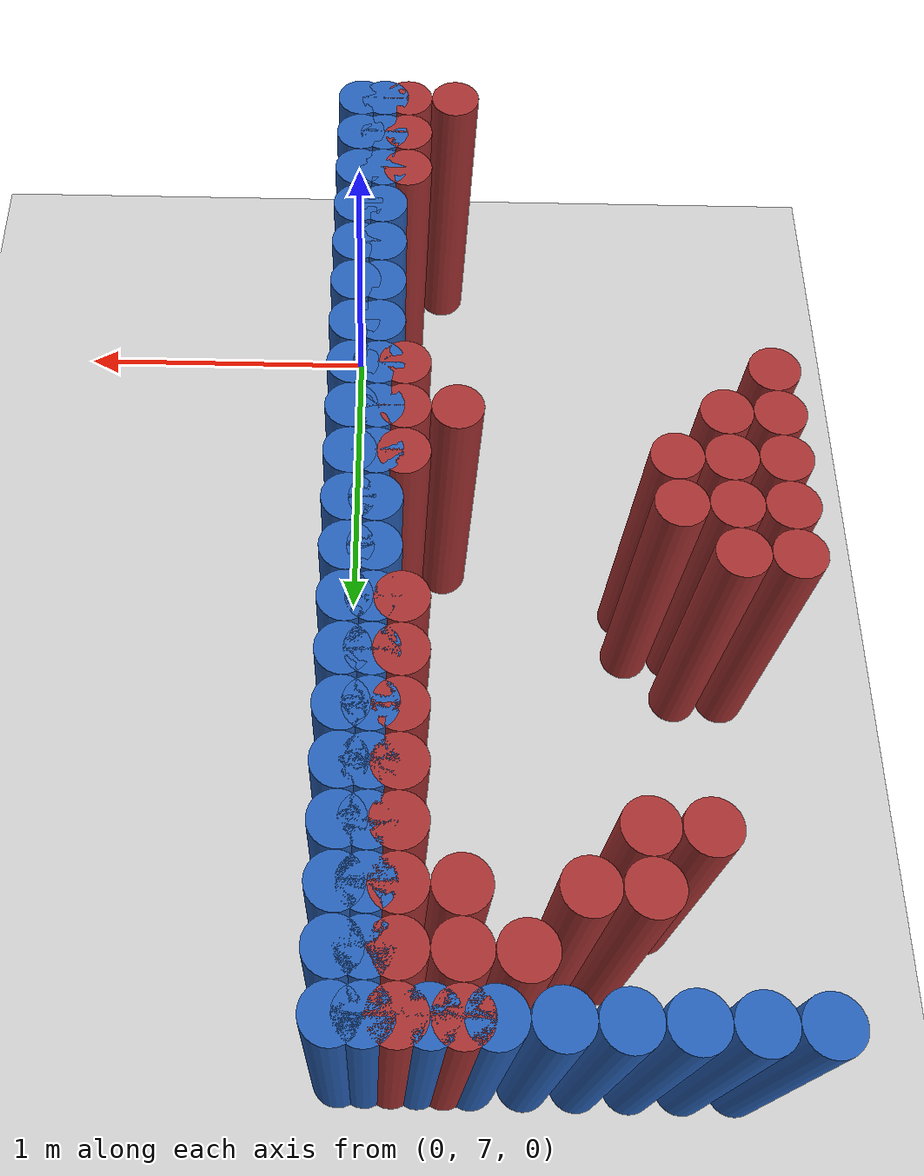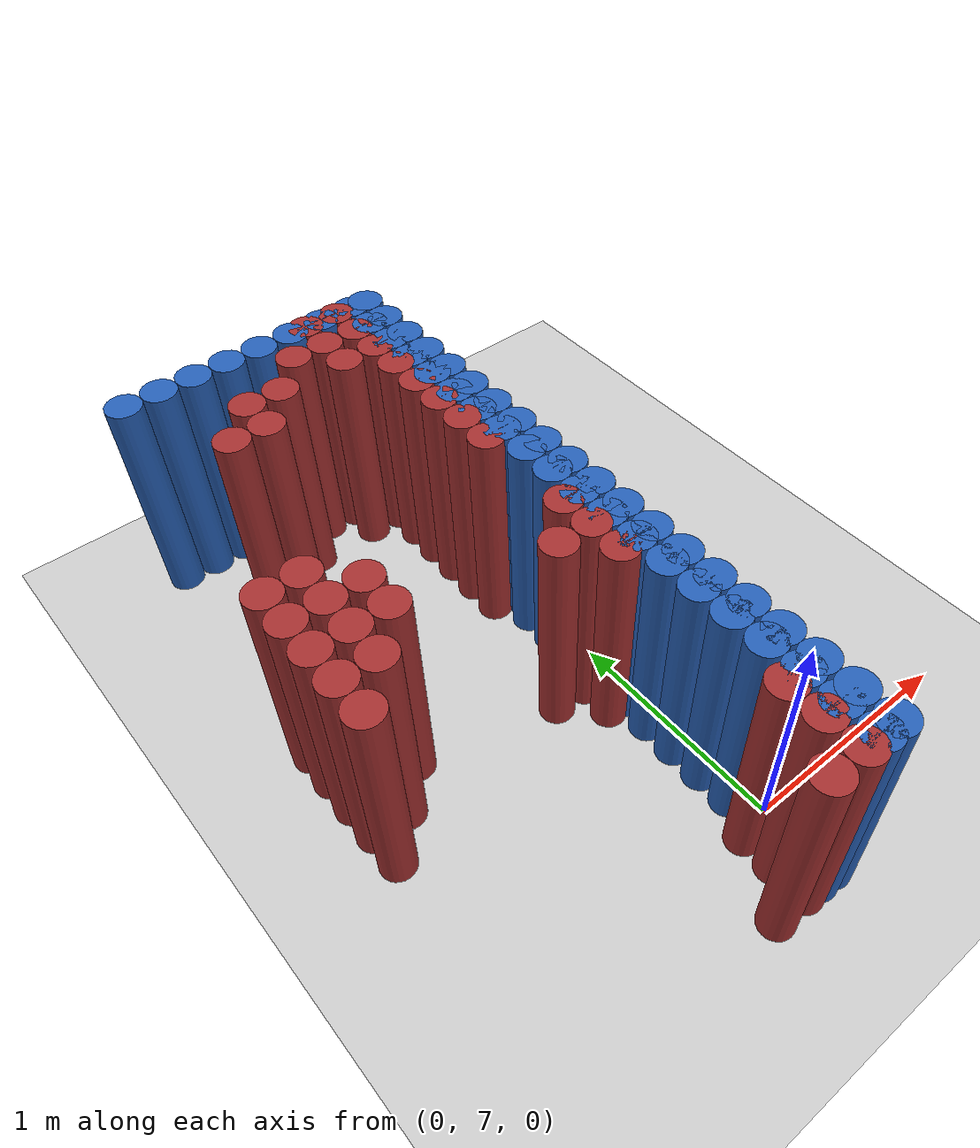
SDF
<sdf version="1.6">
 <world name="barn_world">
  <model name="ground_plane">
   <static>1</static>
   <link name="link">
    <collision name="collision">
     <geometry><plane><normal>0 0 1</normal><size>100 100</size></plane></geometry>
    </collision>
    <visual name="visual">
     <geometry><plane><normal>0 0 1</normal><size>100 100</size></plane></geometry>
     <material>
      <script><uri>file://media/materials/scripts/gazebo.material</uri><name>Gazebo/Grey</name></script>
     </material>
    </visual>
   </link>
  </model>
  <model name="unit_cylinder_316">
   <static>1</static>
   <pose>-1.2000 7.7250 0.5 0 0 0</pose>
   <link name="link">
    <collision name="collision">
     <geometry><cylinder><radius>0.075</radius><length>1</length></cylinder></geometry>
    </collision>
    <visual name="visual">
     <geometry><cylinder><radius>0.075</radius><length>1</length></cylinder></geometry>
     <material><ambient>0.648 0.192 0.192 1</ambient><diffuse>0.648 0.192 0.192 1</diffuse></material>
    </visual>
   </link>
  </model>
  <model name="unit_cylinder_317">
   <static>1</static>
   <pose>-1.2000 7.8750 0.5 0 0 0</pose>
   <link name="link">
    <collision name="collision">
     <geometry><cylinder><radius>0.075</radius><length>1</length></cylinder></geometry>
    </collision>
    <visual name="visual">
     <geometry><cylinder><radius>0.075</radius><length>1</length></cylinder></geometry>
     <material><ambient>0.648 0.192 0.192 1</ambient><diffuse>0.648 0.192 0.192 1</diffuse></material>
    </visual>
   </link>
  </model>
  <model name="unit_cylinder_318">
   <static>1</static>
   <pose>-1.2000 8.0250 0.5 0 0 0</pose>
   <link name="link">
    <collision name="collision">
     <geometry><cylinder><radius>0.075</radius><length>1</length></cylinder></geometry>
    </collision>
    <visual name="visual">
     <geometry><cylinder><radius>0.075</radius><length>1</length></cylinder></geometry>
     <material><ambient>0.648 0.192 0.192 1</ambient><diffuse>0.648 0.192 0.192 1</diffuse></material>
    </visual>
   </link>
  </model>
  <model name="unit_cylinder_319">
   <static>1</static>
   <pose>-1.2000 8.1750 0.5 0 0 0</pose>
   <link name="link">
    <collision name="collision">
     <geometry><cylinder><radius>0.075</radius><length>1</length></cylinder></geometry>
    </collision>
    <visual name="visual">
     <geometry><cylinder><radius>0.075</radius><length>1</length></cylinder></geometry>
     <material><ambient>0.648 0.192 0.192 1</ambient><diffuse>0.648 0.192 0.192 1</diffuse></material>
    </visual>
   </link>
  </model>
  <model name="unit_cylinder_320">
   <static>1</static>
   <pose>-1.2000 8.3250 0.5 0 0 0</pose>
   <link name="link">
    <collision name="collision">
     <geometry><cylinder><radius>0.075</radius><length>1</length></cylinder></geometry>
    </collision>
    <visual name="visual">
     <geometry><cylinder><radius>0.075</radius><length>1</length></cylinder></geometry>
     <material><ambient>0.648 0.192 0.192 1</ambient><diffuse>0.648 0.192 0.192 1</diffuse></material>
    </visual>
   </link>
  </model>
  <model name="unit_cylinder_321">
   <static>1</static>
   <pose>-1.0500 7.8750 0.5 0 0 0</pose>
   <link name="link">
    <collision name="collision">
     <geometry><cylinder><radius>0.075</radius><length>1</length></cylinder></geometry>
    </collision>
    <visual name="visual">
     <geometry><cylinder><radius>0.075</radius><length>1</length></cylinder></geometry>
     <material><ambient>0.648 0.192 0.192 1</ambient><diffuse>0.648 0.192 0.192 1</diffuse></material>
    </visual>
   </link>
  </model>
  <model name="unit_cylinder_322">
   <static>1</static>
   <pose>-1.0500 8.0250 0.5 0 0 0</pose>
   <link name="link">
    <collision name="collision">
     <geometry><cylinder><radius>0.075</radius><length>1</length></cylinder></geometry>
    </collision>
    <visual name="visual">
     <geometry><cylinder><radius>0.075</radius><length>1</length></cylinder></geometry>
     <material><ambient>0.648 0.192 0.192 1</ambient><diffuse>0.648 0.192 0.192 1</diffuse></material>
    </visual>
   </link>
  </model>
  <model name="unit_cylinder_323">
   <static>1</static>
   <pose>-1.0500 8.1750 0.5 0 0 0</pose>
   <link name="link">
    <collision name="collision">
     <geometry><cylinder><radius>0.075</radius><length>1</length></cylinder></geometry>
    </collision>
    <visual name="visual">
     <geometry><cylinder><radius>0.075</radius><length>1</length></cylinder></geometry>
     <material><ambient>0.648 0.192 0.192 1</ambient><diffuse>0.648 0.192 0.192 1</diffuse></material>
    </visual>
   </link>
  </model>
  <model name="unit_cylinder_324">
   <static>1</static>
   <pose>-1.0500 8.3250 0.5 0 0 0</pose>
   <link name="link">
    <collision name="collision">
     <geometry><cylinder><radius>0.075</radius><length>1</length></cylinder></geometry>
    </collision>
    <visual name="visual">
     <geometry><cylinder><radius>0.075</radius><length>1</length></cylinder></geometry>
     <material><ambient>0.648 0.192 0.192 1</ambient><diffuse>0.648 0.192 0.192 1</diffuse></material>
    </visual>
   </link>
  </model>
  <model name="unit_cylinder_325">
   <static>1</static>
   <pose>-0.9000 8.0250 0.5 0 0 0</pose>
   <link name="link">
    <collision name="collision">
     <geometry><cylinder><radius>0.075</radius><length>1</length></cylinder></geometry>
    </collision>
    <visual name="visual">
     <geometry><cylinder><radius>0.075</radius><length>1</length></cylinder></geometry>
     <material><ambient>0.648 0.192 0.192 1</ambient><diffuse>0.648 0.192 0.192 1</diffuse></material>
    </visual>
   </link>
  </model>
  <model name="unit_cylinder_326">
   <static>1</static>
   <pose>-0.9000 8.1750 0.5 0 0 0</pose>
   <link name="link">
    <collision name="collision">
     <geometry><cylinder><radius>0.075</radius><length>1</length></cylinder></geometry>
    </collision>
    <visual name="visual">
     <geometry><cylinder><radius>0.075</radius><length>1</length></cylinder></geometry>
     <material><ambient>0.648 0.192 0.192 1</ambient><diffuse>0.648 0.192 0.192 1</diffuse></material>
    </visual>
   </link>
  </model>
  <model name="unit_cylinder_327">
   <static>1</static>
   <pose>-0.9000 9.0750 0.5 0 0 0</pose>
   <link name="link">
    <collision name="collision">
     <geometry><cylinder><radius>0.075</radius><length>1</length></cylinder></geometry>
    </collision>
    <visual name="visual">
     <geometry><cylinder><radius>0.075</radius><length>1</length></cylinder></geometry>
     <material><ambient>0.648 0.192 0.192 1</ambient><diffuse>0.648 0.192 0.192 1</diffuse></material>
    </visual>
   </link>
  </model>
  <model name="unit_cylinder_329">
   <static>1</static>
   <pose>-0.7500 9.0750 0.5 0 0 0</pose>
   <link name="link">
    <collision name="collision">
     <geometry><cylinder><radius>0.075</radius><length>1</length></cylinder></geometry>
    </collision>
    <visual name="visual">
     <geometry><cylinder><radius>0.075</radius><length>1</length></cylinder></geometry>
     <material><ambient>0.648 0.192 0.192 1</ambient><diffuse>0.648 0.192 0.192 1</diffuse></material>
    </visual>
   </link>
  </model>
  <model name="unit_cylinder_330">
   <static>1</static>
   <pose>-0.7500 9.2250 0.5 0 0 0</pose>
   <link name="link">
    <collision name="collision">
     <geometry><cylinder><radius>0.075</radius><length>1</length></cylinder></geometry>
    </collision>
    <visual name="visual">
     <geometry><cylinder><radius>0.075</radius><length>1</length></cylinder></geometry>
     <material><ambient>0.648 0.192 0.192 1</ambient><diffuse>0.648 0.192 0.192 1</diffuse></material>
    </visual>
   </link>
  </model>
  <model name="unit_cylinder_333">
   <static>1</static>
   <pose>-0.6000 9.2250 0.5 0 0 0</pose>
   <link name="link">
    <collision name="collision">
     <geometry><cylinder><radius>0.075</radius><length>1</length></cylinder></geometry>
    </collision>
    <visual name="visual">
     <geometry><cylinder><radius>0.075</radius><length>1</length></cylinder></geometry>
     <material><ambient>0.648 0.192 0.192 1</ambient><diffuse>0.648 0.192 0.192 1</diffuse></material>
    </visual>
   </link>
  </model>
  <model name="unit_cylinder_338">
   <static>1</static>
   <pose>-0.4500 9.3750 0.5 0 0 0</pose>
   <link name="link">
    <collision name="collision">
     <geometry><cylinder><radius>0.075</radius><length>1</length></cylinder></geometry>
    </collision>
    <visual name="visual">
     <geometry><cylinder><radius>0.075</radius><length>1</length></cylinder></geometry>
     <material><ambient>0.648 0.192 0.192 1</ambient><diffuse>0.648 0.192 0.192 1</diffuse></material>
    </visual>
   </link>
  </model>
  <model name="unit_cylinder_344">
   <static>1</static>
   <pose>-0.3000 6.6750 0.5 0 0 0</pose>
   <link name="link">
    <collision name="collision">
     <geometry><cylinder><radius>0.075</radius><length>1</length></cylinder></geometry>
    </collision>
    <visual name="visual">
     <geometry><cylinder><radius>0.075</radius><length>1</length></cylinder></geometry>
     <material><ambient>0.648 0.192 0.192 1</ambient><diffuse>0.648 0.192 0.192 1</diffuse></material>
    </visual>
   </link>
  </model>
  <model name="unit_cylinder_345">
   <static>1</static>
   <pose>-0.3000 7.8750 0.5 0 0 0</pose>
   <link name="link">
    <collision name="collision">
     <geometry><cylinder><radius>0.075</radius><length>1</length></cylinder></geometry>
    </collision>
    <visual name="visual">
     <geometry><cylinder><radius>0.075</radius><length>1</length></cylinder></geometry>
     <material><ambient>0.648 0.192 0.192 1</ambient><diffuse>0.648 0.192 0.192 1</diffuse></material>
    </visual>
   </link>
  </model>
  <model name="unit_cylinder_346">
   <static>1</static>
   <pose>-0.3000 9.2250 0.5 0 0 0</pose>
   <link name="link">
    <collision name="collision">
     <geometry><cylinder><radius>0.075</radius><length>1</length></cylinder></geometry>
    </collision>
    <visual name="visual">
     <geometry><cylinder><radius>0.075</radius><length>1</length></cylinder></geometry>
     <material><ambient>0.648 0.192 0.192 1</ambient><diffuse>0.648 0.192 0.192 1</diffuse></material>
    </visual>
   </link>
  </model>
  <model name="unit_cylinder_347">
   <static>1</static>
   <pose>-0.3000 9.3750 0.5 0 0 0</pose>
   <link name="link">
    <collision name="collision">
     <geometry><cylinder><radius>0.075</radius><length>1</length></cylinder></geometry>
    </collision>
    <visual name="visual">
     <geometry><cylinder><radius>0.075</radius><length>1</length></cylinder></geometry>
     <material><ambient>0.648 0.192 0.192 1</ambient><diffuse>0.648 0.192 0.192 1</diffuse></material>
    </visual>
   </link>
  </model>
  <model name="unit_cylinder_348">
   <static>1</static>
   <pose>-0.3000 9.5250 0.5 0 0 0</pose>
   <link name="link">
    <collision name="collision">
     <geometry><cylinder><radius>0.075</radius><length>1</length></cylinder></geometry>
    </collision>
    <visual name="visual">
     <geometry><cylinder><radius>0.075</radius><length>1</length></cylinder></geometry>
     <material><ambient>0.648 0.192 0.192 1</ambient><diffuse>0.648 0.192 0.192 1</diffuse></material>
    </visual>
   </link>
  </model>
  <model name="unit_cylinder_357">
   <static>1</static>
   <pose>-0.1500 6.6750 0.5 0 0 0</pose>
   <link name="link">
    <collision name="collision">
     <geometry><cylinder><radius>0.075</radius><length>1</length></cylinder></geometry>
    </collision>
    <visual name="visual">
     <geometry><cylinder><radius>0.075</radius><length>1</length></cylinder></geometry>
     <material><ambient>0.648 0.192 0.192 1</ambient><diffuse>0.648 0.192 0.192 1</diffuse></material>
    </visual>
   </link>
  </model>
  <model name="unit_cylinder_358">
   <static>1</static>
   <pose>-0.1500 6.8250 0.5 0 0 0</pose>
   <link name="link">
    <collision name="collision">
     <geometry><cylinder><radius>0.075</radius><length>1</length></cylinder></geometry>
    </collision>
    <visual name="visual">
     <geometry><cylinder><radius>0.075</radius><length>1</length></cylinder></geometry>
     <material><ambient>0.648 0.192 0.192 1</ambient><diffuse>0.648 0.192 0.192 1</diffuse></material>
    </visual>
   </link>
  </model>
  <model name="unit_cylinder_359">
   <static>1</static>
   <pose>-0.1500 6.9750 0.5 0 0 0</pose>
   <link name="link">
    <collision name="collision">
     <geometry><cylinder><radius>0.075</radius><length>1</length></cylinder></geometry>
    </collision>
    <visual name="visual">
     <geometry><cylinder><radius>0.075</radius><length>1</length></cylinder></geometry>
     <material><ambient>0.648 0.192 0.192 1</ambient><diffuse>0.648 0.192 0.192 1</diffuse></material>
    </visual>
   </link>
  </model>
  <model name="unit_cylinder_360">
   <static>1</static>
   <pose>-0.1500 7.7250 0.5 0 0 0</pose>
   <link name="link">
    <collision name="collision">
     <geometry><cylinder><radius>0.075</radius><length>1</length></cylinder></geometry>
    </collision>
    <visual name="visual">
     <geometry><cylinder><radius>0.075</radius><length>1</length></cylinder></geometry>
     <material><ambient>0.648 0.192 0.192 1</ambient><diffuse>0.648 0.192 0.192 1</diffuse></material>
    </visual>
   </link>
  </model>
  <model name="unit_cylinder_361">
   <static>1</static>
   <pose>-0.1500 7.8750 0.5 0 0 0</pose>
   <link name="link">
    <collision name="collision">
     <geometry><cylinder><radius>0.075</radius><length>1</length></cylinder></geometry>
    </collision>
    <visual name="visual">
     <geometry><cylinder><radius>0.075</radius><length>1</length></cylinder></geometry>
     <material><ambient>0.648 0.192 0.192 1</ambient><diffuse>0.648 0.192 0.192 1</diffuse></material>
    </visual>
   </link>
  </model>
  <model name="unit_cylinder_362">
   <static>1</static>
   <pose>-0.1500 8.0250 0.5 0 0 0</pose>
   <link name="link">
    <collision name="collision">
     <geometry><cylinder><radius>0.075</radius><length>1</length></cylinder></geometry>
    </collision>
    <visual name="visual">
     <geometry><cylinder><radius>0.075</radius><length>1</length></cylinder></geometry>
     <material><ambient>0.648 0.192 0.192 1</ambient><diffuse>0.648 0.192 0.192 1</diffuse></material>
    </visual>
   </link>
  </model>
  <model name="unit_cylinder_363">
   <static>1</static>
   <pose>-0.1500 8.4750 0.5 0 0 0</pose>
   <link name="link">
    <collision name="collision">
     <geometry><cylinder><radius>0.075</radius><length>1</length></cylinder></geometry>
    </collision>
    <visual name="visual">
     <geometry><cylinder><radius>0.075</radius><length>1</length></cylinder></geometry>
     <material><ambient>0.648 0.192 0.192 1</ambient><diffuse>0.648 0.192 0.192 1</diffuse></material>
    </visual>
   </link>
  </model>
  <model name="unit_cylinder_364">
   <static>1</static>
   <pose>-0.1500 8.6250 0.5 0 0 0</pose>
   <link name="link">
    <collision name="collision">
     <geometry><cylinder><radius>0.075</radius><length>1</length></cylinder></geometry>
    </collision>
    <visual name="visual">
     <geometry><cylinder><radius>0.075</radius><length>1</length></cylinder></geometry>
     <material><ambient>0.648 0.192 0.192 1</ambient><diffuse>0.648 0.192 0.192 1</diffuse></material>
    </visual>
   </link>
  </model>
  <model name="unit_cylinder_365">
   <static>1</static>
   <pose>-0.1500 8.7750 0.5 0 0 0</pose>
   <link name="link">
    <collision name="collision">
     <geometry><cylinder><radius>0.075</radius><length>1</length></cylinder></geometry>
    </collision>
    <visual name="visual">
     <geometry><cylinder><radius>0.075</radius><length>1</length></cylinder></geometry>
     <material><ambient>0.648 0.192 0.192 1</ambient><diffuse>0.648 0.192 0.192 1</diffuse></material>
    </visual>
   </link>
  </model>
  <model name="unit_cylinder_366">
   <static>1</static>
   <pose>-0.1500 8.9250 0.5 0 0 0</pose>
   <link name="link">
    <collision name="collision">
     <geometry><cylinder><radius>0.075</radius><length>1</length></cylinder></geometry>
    </collision>
    <visual name="visual">
     <geometry><cylinder><radius>0.075</radius><length>1</length></cylinder></geometry>
     <material><ambient>0.648 0.192 0.192 1</ambient><diffuse>0.648 0.192 0.192 1</diffuse></material>
    </visual>
   </link>
  </model>
  <model name="unit_cylinder_367">
   <static>1</static>
   <pose>-0.1500 9.0750 0.5 0 0 0</pose>
   <link name="link">
    <collision name="collision">
     <geometry><cylinder><radius>0.075</radius><length>1</length></cylinder></geometry>
    </collision>
    <visual name="visual">
     <geometry><cylinder><radius>0.075</radius><length>1</length></cylinder></geometry>
     <material><ambient>0.648 0.192 0.192 1</ambient><diffuse>0.648 0.192 0.192 1</diffuse></material>
    </visual>
   </link>
  </model>
  <model name="unit_cylinder_368">
   <static>1</static>
   <pose>-0.1500 9.2250 0.5 0 0 0</pose>
   <link name="link">
    <collision name="collision">
     <geometry><cylinder><radius>0.075</radius><length>1</length></cylinder></geometry>
    </collision>
    <visual name="visual">
     <geometry><cylinder><radius>0.075</radius><length>1</length></cylinder></geometry>
     <material><ambient>0.648 0.192 0.192 1</ambient><diffuse>0.648 0.192 0.192 1</diffuse></material>
    </visual>
   </link>
  </model>
  <model name="unit_cylinder_369">
   <static>1</static>
   <pose>-0.1500 9.3750 0.5 0 0 0</pose>
   <link name="link">
    <collision name="collision">
     <geometry><cylinder><radius>0.075</radius><length>1</length></cylinder></geometry>
    </collision>
    <visual name="visual">
     <geometry><cylinder><radius>0.075</radius><length>1</length></cylinder></geometry>
     <material><ambient>0.648 0.192 0.192 1</ambient><diffuse>0.648 0.192 0.192 1</diffuse></material>
    </visual>
   </link>
  </model>
  <model name="unit_cylinder_370">
   <static>1</static>
   <pose>-0.1500 9.5250 0.5 0 0 0</pose>
   <link name="link">
    <collision name="collision">
     <geometry><cylinder><radius>0.075</radius><length>1</length></cylinder></geometry>
    </collision>
    <visual name="visual">
     <geometry><cylinder><radius>0.075</radius><length>1</length></cylinder></geometry>
     <material><ambient>0.648 0.192 0.192 1</ambient><diffuse>0.648 0.192 0.192 1</diffuse></material>
    </visual>
   </link>
  </model>
  <model name="unit_cylinder_381">
   <static>1</static>
   <pose>0.0000 6.6750 0.5 0 0 0</pose>
   <link name="link">
    <collision name="collision">
     <geometry><cylinder><radius>0.075</radius><length>1</length></cylinder></geometry>
    </collision>
    <visual name="visual">
     <geometry><cylinder><radius>0.075</radius><length>1</length></cylinder></geometry>
     <material><ambient>0.152 0.379 0.72 1</ambient><diffuse>0.152 0.379 0.72 1</diffuse></material>
    </visual>
   </link>
  </model>
  <model name="unit_cylinder_382">
   <static>1</static>
   <pose>0.0000 6.8250 0.5 0 0 0</pose>
   <link name="link">
    <collision name="collision">
     <geometry><cylinder><radius>0.075</radius><length>1</length></cylinder></geometry>
    </collision>
    <visual name="visual">
     <geometry><cylinder><radius>0.075</radius><length>1</length></cylinder></geometry>
     <material><ambient>0.152 0.379 0.72 1</ambient><diffuse>0.152 0.379 0.72 1</diffuse></material>
    </visual>
   </link>
  </model>
  <model name="unit_cylinder_383">
   <static>1</static>
   <pose>0.0000 6.9750 0.5 0 0 0</pose>
   <link name="link">
    <collision name="collision">
     <geometry><cylinder><radius>0.075</radius><length>1</length></cylinder></geometry>
    </collision>
    <visual name="visual">
     <geometry><cylinder><radius>0.075</radius><length>1</length></cylinder></geometry>
     <material><ambient>0.152 0.379 0.72 1</ambient><diffuse>0.152 0.379 0.72 1</diffuse></material>
    </visual>
   </link>
  </model>
  <model name="unit_cylinder_384">
   <static>1</static>
   <pose>0.0000 7.1250 0.5 0 0 0</pose>
   <link name="link">
    <collision name="collision">
     <geometry><cylinder><radius>0.075</radius><length>1</length></cylinder></geometry>
    </collision>
    <visual name="visual">
     <geometry><cylinder><radius>0.075</radius><length>1</length></cylinder></geometry>
     <material><ambient>0.152 0.379 0.72 1</ambient><diffuse>0.152 0.379 0.72 1</diffuse></material>
    </visual>
   </link>
  </model>
  <model name="unit_cylinder_385">
   <static>1</static>
   <pose>0.0000 7.2750 0.5 0 0 0</pose>
   <link name="link">
    <collision name="collision">
     <geometry><cylinder><radius>0.075</radius><length>1</length></cylinder></geometry>
    </collision>
    <visual name="visual">
     <geometry><cylinder><radius>0.075</radius><length>1</length></cylinder></geometry>
     <material><ambient>0.152 0.379 0.72 1</ambient><diffuse>0.152 0.379 0.72 1</diffuse></material>
    </visual>
   </link>
  </model>
  <model name="unit_cylinder_386">
   <static>1</static>
   <pose>0.0000 7.4250 0.5 0 0 0</pose>
   <link name="link">
    <collision name="collision">
     <geometry><cylinder><radius>0.075</radius><length>1</length></cylinder></geometry>
    </collision>
    <visual name="visual">
     <geometry><cylinder><radius>0.075</radius><length>1</length></cylinder></geometry>
     <material><ambient>0.152 0.379 0.72 1</ambient><diffuse>0.152 0.379 0.72 1</diffuse></material>
    </visual>
   </link>
  </model>
  <model name="unit_cylinder_387">
   <static>1</static>
   <pose>0.0000 7.5750 0.5 0 0 0</pose>
   <link name="link">
    <collision name="collision">
     <geometry><cylinder><radius>0.075</radius><length>1</length></cylinder></geometry>
    </collision>
    <visual name="visual">
     <geometry><cylinder><radius>0.075</radius><length>1</length></cylinder></geometry>
     <material><ambient>0.152 0.379 0.72 1</ambient><diffuse>0.152 0.379 0.72 1</diffuse></material>
    </visual>
   </link>
  </model>
  <model name="unit_cylinder_388">
   <static>1</static>
   <pose>0.0000 7.7250 0.5 0 0 0</pose>
   <link name="link">
    <collision name="collision">
     <geometry><cylinder><radius>0.075</radius><length>1</length></cylinder></geometry>
    </collision>
    <visual name="visual">
     <geometry><cylinder><radius>0.075</radius><length>1</length></cylinder></geometry>
     <material><ambient>0.152 0.379 0.72 1</ambient><diffuse>0.152 0.379 0.72 1</diffuse></material>
    </visual>
   </link>
  </model>
  <model name="unit_cylinder_389">
   <static>1</static>
   <pose>0.0000 7.8750 0.5 0 0 0</pose>
   <link name="link">
    <collision name="collision">
     <geometry><cylinder><radius>0.075</radius><length>1</length></cylinder></geometry>
    </collision>
    <visual name="visual">
     <geometry><cylinder><radius>0.075</radius><length>1</length></cylinder></geometry>
     <material><ambient>0.152 0.379 0.72 1</ambient><diffuse>0.152 0.379 0.72 1</diffuse></material>
    </visual>
   </link>
  </model>
  <model name="unit_cylinder_390">
   <static>1</static>
   <pose>0.0000 8.0250 0.5 0 0 0</pose>
   <link name="link">
    <collision name="collision">
     <geometry><cylinder><radius>0.075</radius><length>1</length></cylinder></geometry>
    </collision>
    <visual name="visual">
     <geometry><cylinder><radius>0.075</radius><length>1</length></cylinder></geometry>
     <material><ambient>0.152 0.379 0.72 1</ambient><diffuse>0.152 0.379 0.72 1</diffuse></material>
    </visual>
   </link>
  </model>
  <model name="unit_cylinder_391">
   <static>1</static>
   <pose>0.0000 8.1750 0.5 0 0 0</pose>
   <link name="link">
    <collision name="collision">
     <geometry><cylinder><radius>0.075</radius><length>1</length></cylinder></geometry>
    </collision>
    <visual name="visual">
     <geometry><cylinder><radius>0.075</radius><length>1</length></cylinder></geometry>
     <material><ambient>0.152 0.379 0.72 1</ambient><diffuse>0.152 0.379 0.72 1</diffuse></material>
    </visual>
   </link>
  </model>
  <model name="unit_cylinder_392">
   <static>1</static>
   <pose>0.0000 8.3250 0.5 0 0 0</pose>
   <link name="link">
    <collision name="collision">
     <geometry><cylinder><radius>0.075</radius><length>1</length></cylinder></geometry>
    </collision>
    <visual name="visual">
     <geometry><cylinder><radius>0.075</radius><length>1</length></cylinder></geometry>
     <material><ambient>0.152 0.379 0.72 1</ambient><diffuse>0.152 0.379 0.72 1</diffuse></material>
    </visual>
   </link>
  </model>
  <model name="unit_cylinder_393">
   <static>1</static>
   <pose>0.0000 8.4750 0.5 0 0 0</pose>
   <link name="link">
    <collision name="collision">
     <geometry><cylinder><radius>0.075</radius><length>1</length></cylinder></geometry>
    </collision>
    <visual name="visual">
     <geometry><cylinder><radius>0.075</radius><length>1</length></cylinder></geometry>
     <material><ambient>0.152 0.379 0.72 1</ambient><diffuse>0.152 0.379 0.72 1</diffuse></material>
    </visual>
   </link>
  </model>
  <model name="unit_cylinder_394">
   <static>1</static>
   <pose>0.0000 8.6250 0.5 0 0 0</pose>
   <link name="link">
    <collision name="collision">
     <geometry><cylinder><radius>0.075</radius><length>1</length></cylinder></geometry>
    </collision>
    <visual name="visual">
     <geometry><cylinder><radius>0.075</radius><length>1</length></cylinder></geometry>
     <material><ambient>0.152 0.379 0.72 1</ambient><diffuse>0.152 0.379 0.72 1</diffuse></material>
    </visual>
   </link>
  </model>
  <model name="unit_cylinder_395">
   <static>1</static>
   <pose>0.0000 8.7750 0.5 0 0 0</pose>
   <link name="link">
    <collision name="collision">
     <geometry><cylinder><radius>0.075</radius><length>1</length></cylinder></geometry>
    </collision>
    <visual name="visual">
     <geometry><cylinder><radius>0.075</radius><length>1</length></cylinder></geometry>
     <material><ambient>0.152 0.379 0.72 1</ambient><diffuse>0.152 0.379 0.72 1</diffuse></material>
    </visual>
   </link>
  </model>
  <model name="unit_cylinder_396">
   <static>1</static>
   <pose>0.0000 8.9250 0.5 0 0 0</pose>
   <link name="link">
    <collision name="collision">
     <geometry><cylinder><radius>0.075</radius><length>1</length></cylinder></geometry>
    </collision>
    <visual name="visual">
     <geometry><cylinder><radius>0.075</radius><length>1</length></cylinder></geometry>
     <material><ambient>0.152 0.379 0.72 1</ambient><diffuse>0.152 0.379 0.72 1</diffuse></material>
    </visual>
   </link>
  </model>
  <model name="unit_cylinder_397">
   <static>1</static>
   <pose>0.0000 9.0750 0.5 0 0 0</pose>
   <link name="link">
    <collision name="collision">
     <geometry><cylinder><radius>0.075</radius><length>1</length></cylinder></geometry>
    </collision>
    <visual name="visual">
     <geometry><cylinder><radius>0.075</radius><length>1</length></cylinder></geometry>
     <material><ambient>0.152 0.379 0.72 1</ambient><diffuse>0.152 0.379 0.72 1</diffuse></material>
    </visual>
   </link>
  </model>
  <model name="unit_cylinder_398">
   <static>1</static>
   <pose>0.0000 9.2250 0.5 0 0 0</pose>
   <link name="link">
    <collision name="collision">
     <geometry><cylinder><radius>0.075</radius><length>1</length></cylinder></geometry>
    </collision>
    <visual name="visual">
     <geometry><cylinder><radius>0.075</radius><length>1</length></cylinder></geometry>
     <material><ambient>0.152 0.379 0.72 1</ambient><diffuse>0.152 0.379 0.72 1</diffuse></material>
    </visual>
   </link>
  </model>
  <model name="unit_cylinder_399">
   <static>1</static>
   <pose>0.0000 9.3750 0.5 0 0 0</pose>
   <link name="link">
    <collision name="collision">
     <geometry><cylinder><radius>0.075</radius><length>1</length></cylinder></geometry>
    </collision>
    <visual name="visual">
     <geometry><cylinder><radius>0.075</radius><length>1</length></cylinder></geometry>
     <material><ambient>0.152 0.379 0.72 1</ambient><diffuse>0.152 0.379 0.72 1</diffuse></material>
    </visual>
   </link>
  </model>
  <model name="unit_cylinder_400">
   <static>1</static>
   <pose>0.0000 9.5250 0.5 0 0 0</pose>
   <link name="link">
    <collision name="collision">
     <geometry><cylinder><radius>0.075</radius><length>1</length></cylinder></geometry>
    </collision>
    <visual name="visual">
     <geometry><cylinder><radius>0.075</radius><length>1</length></cylinder></geometry>
     <material><ambient>0.152 0.379 0.72 1</ambient><diffuse>0.152 0.379 0.72 1</diffuse></material>
    </visual>
   </link>
  </model>
  <model name="unit_cylinder_401">
   <static>1</static>
   <pose>-0.0750 9.5250 0.5 0 0 0</pose>
   <link name="link">
    <collision name="collision">
     <geometry><cylinder><radius>0.075</radius><length>1</length></cylinder></geometry>
    </collision>
    <visual name="visual">
     <geometry><cylinder><radius>0.075</radius><length>1</length></cylinder></geometry>
     <material><ambient>0.152 0.379 0.72 1</ambient><diffuse>0.152 0.379 0.72 1</diffuse></material>
    </visual>
   </link>
  </model>
  <model name="unit_cylinder_402">
   <static>1</static>
   <pose>-0.2250 9.5250 0.5 0 0 0</pose>
   <link name="link">
    <collision name="collision">
     <geometry><cylinder><radius>0.075</radius><length>1</length></cylinder></geometry>
    </collision>
    <visual name="visual">
     <geometry><cylinder><radius>0.075</radius><length>1</length></cylinder></geometry>
     <material><ambient>0.152 0.379 0.72 1</ambient><diffuse>0.152 0.379 0.72 1</diffuse></material>
    </visual>
   </link>
  </model>
  <model name="unit_cylinder_403">
   <static>1</static>
   <pose>-0.3750 9.5250 0.5 0 0 0</pose>
   <link name="link">
    <collision name="collision">
     <geometry><cylinder><radius>0.075</radius><length>1</length></cylinder></geometry>
    </collision>
    <visual name="visual">
     <geometry><cylinder><radius>0.075</radius><length>1</length></cylinder></geometry>
     <material><ambient>0.152 0.379 0.72 1</ambient><diffuse>0.152 0.379 0.72 1</diffuse></material>
    </visual>
   </link>
  </model>
  <model name="unit_cylinder_404">
   <static>1</static>
   <pose>-0.5250 9.5250 0.5 0 0 0</pose>
   <link name="link">
    <collision name="collision">
     <geometry><cylinder><radius>0.075</radius><length>1</length></cylinder></geometry>
    </collision>
    <visual name="visual">
     <geometry><cylinder><radius>0.075</radius><length>1</length></cylinder></geometry>
     <material><ambient>0.152 0.379 0.72 1</ambient><diffuse>0.152 0.379 0.72 1</diffuse></material>
    </visual>
   </link>
  </model>
  <model name="unit_cylinder_405">
   <static>1</static>
   <pose>-0.6750 9.5250 0.5 0 0 0</pose>
   <link name="link">
    <collision name="collision">
     <geometry><cylinder><radius>0.075</radius><length>1</length></cylinder></geometry>
    </collision>
    <visual name="visual">
     <geometry><cylinder><radius>0.075</radius><length>1</length></cylinder></geometry>
     <material><ambient>0.152 0.379 0.72 1</ambient><diffuse>0.152 0.379 0.72 1</diffuse></material>
    </visual>
   </link>
  </model>
  <model name="unit_cylinder_406">
   <static>1</static>
   <pose>-0.8250 9.5250 0.5 0 0 0</pose>
   <link name="link">
    <collision name="collision">
     <geometry><cylinder><radius>0.075</radius><length>1</length></cylinder></geometry>
    </collision>
    <visual name="visual">
     <geometry><cylinder><radius>0.075</radius><length>1</length></cylinder></geometry>
     <material><ambient>0.152 0.379 0.72 1</ambient><diffuse>0.152 0.379 0.72 1</diffuse></material>
    </visual>
   </link>
  </model>
  <model name="unit_cylinder_407">
   <static>1</static>
   <pose>-0.9750 9.5250 0.5 0 0 0</pose>
   <link name="link">
    <collision name="collision">
     <geometry><cylinder><radius>0.075</radius><length>1</length></cylinder></geometry>
    </collision>
    <visual name="visual">
     <geometry><cylinder><radius>0.075</radius><length>1</length></cylinder></geometry>
     <material><ambient>0.152 0.379 0.72 1</ambient><diffuse>0.152 0.379 0.72 1</diffuse></material>
    </visual>
   </link>
  </model>
  <model name="unit_cylinder_408">
   <static>1</static>
   <pose>-1.1250 9.5250 0.5 0 0 0</pose>
   <link name="link">
    <collision name="collision">
     <geometry><cylinder><radius>0.075</radius><length>1</length></cylinder></geometry>
    </collision>
    <visual name="visual">
     <geometry><cylinder><radius>0.075</radius><length>1</length></cylinder></geometry>
     <material><ambient>0.152 0.379 0.72 1</ambient><diffuse>0.152 0.379 0.72 1</diffuse></material>
    </visual>
   </link>
  </model>
  <model name="unit_cylinder_451">
   <static>1</static>
   <pose>-0.0750 6.6750 0.5 0 0 0</pose>
   <link name="link">
    <collision name="collision">
     <geometry><cylinder><radius>0.075</radius><length>1</length></cylinder></geometry>
    </collision>
    <visual name="visual">
     <geometry><cylinder><radius>0.075</radius><length>1</length></cylinder></geometry>
     <material><ambient>0.152 0.379 0.72 1</ambient><diffuse>0.152 0.379 0.72 1</diffuse></material>
    </visual>
   </link>
  </model>
  <model name="unit_cylinder_453">
   <static>1</static>
   <pose>-0.0750 6.8250 0.5 0 0 0</pose>
   <link name="link">
    <collision name="collision">
     <geometry><cylinder><radius>0.075</radius><length>1</length></cylinder></geometry>
    </collision>
    <visual name="visual">
     <geometry><cylinder><radius>0.075</radius><length>1</length></cylinder></geometry>
     <material><ambient>0.152 0.379 0.72 1</ambient><diffuse>0.152 0.379 0.72 1</diffuse></material>
    </visual>
   </link>
  </model>
  <model name="unit_cylinder_455">
   <static>1</static>
   <pose>-0.0750 6.9750 0.5 0 0 0</pose>
   <link name="link">
    <collision name="collision">
     <geometry><cylinder><radius>0.075</radius><length>1</length></cylinder></geometry>
    </collision>
    <visual name="visual">
     <geometry><cylinder><radius>0.075</radius><length>1</length></cylinder></geometry>
     <material><ambient>0.152 0.379 0.72 1</ambient><diffuse>0.152 0.379 0.72 1</diffuse></material>
    </visual>
   </link>
  </model>
  <model name="unit_cylinder_457">
   <static>1</static>
   <pose>-0.0750 7.1250 0.5 0 0 0</pose>
   <link name="link">
    <collision name="collision">
     <geometry><cylinder><radius>0.075</radius><length>1</length></cylinder></geometry>
    </collision>
    <visual name="visual">
     <geometry><cylinder><radius>0.075</radius><length>1</length></cylinder></geometry>
     <material><ambient>0.152 0.379 0.72 1</ambient><diffuse>0.152 0.379 0.72 1</diffuse></material>
    </visual>
   </link>
  </model>
  <model name="unit_cylinder_459">
   <static>1</static>
   <pose>-0.0750 7.2750 0.5 0 0 0</pose>
   <link name="link">
    <collision name="collision">
     <geometry><cylinder><radius>0.075</radius><length>1</length></cylinder></geometry>
    </collision>
    <visual name="visual">
     <geometry><cylinder><radius>0.075</radius><length>1</length></cylinder></geometry>
     <material><ambient>0.152 0.379 0.72 1</ambient><diffuse>0.152 0.379 0.72 1</diffuse></material>
    </visual>
   </link>
  </model>
  <model name="unit_cylinder_461">
   <static>1</static>
   <pose>-0.0750 7.4250 0.5 0 0 0</pose>
   <link name="link">
    <collision name="collision">
     <geometry><cylinder><radius>0.075</radius><length>1</length></cylinder></geometry>
    </collision>
    <visual name="visual">
     <geometry><cylinder><radius>0.075</radius><length>1</length></cylinder></geometry>
     <material><ambient>0.152 0.379 0.72 1</ambient><diffuse>0.152 0.379 0.72 1</diffuse></material>
    </visual>
   </link>
  </model>
  <model name="unit_cylinder_463">
   <static>1</static>
   <pose>-0.0750 7.5750 0.5 0 0 0</pose>
   <link name="link">
    <collision name="collision">
     <geometry><cylinder><radius>0.075</radius><length>1</length></cylinder></geometry>
    </collision>
    <visual name="visual">
     <geometry><cylinder><radius>0.075</radius><length>1</length></cylinder></geometry>
     <material><ambient>0.152 0.379 0.72 1</ambient><diffuse>0.152 0.379 0.72 1</diffuse></material>
    </visual>
   </link>
  </model>
  <model name="unit_cylinder_465">
   <static>1</static>
   <pose>-0.0750 7.7250 0.5 0 0 0</pose>
   <link name="link">
    <collision name="collision">
     <geometry><cylinder><radius>0.075</radius><length>1</length></cylinder></geometry>
    </collision>
    <visual name="visual">
     <geometry><cylinder><radius>0.075</radius><length>1</length></cylinder></geometry>
     <material><ambient>0.152 0.379 0.72 1</ambient><diffuse>0.152 0.379 0.72 1</diffuse></material>
    </visual>
   </link>
  </model>
  <model name="unit_cylinder_467">
   <static>1</static>
   <pose>-0.0750 7.8750 0.5 0 0 0</pose>
   <link name="link">
    <collision name="collision">
     <geometry><cylinder><radius>0.075</radius><length>1</length></cylinder></geometry>
    </collision>
    <visual name="visual">
     <geometry><cylinder><radius>0.075</radius><length>1</length></cylinder></geometry>
     <material><ambient>0.152 0.379 0.72 1</ambient><diffuse>0.152 0.379 0.72 1</diffuse></material>
    </visual>
   </link>
  </model>
  <model name="unit_cylinder_469">
   <static>1</static>
   <pose>-0.0750 8.0250 0.5 0 0 0</pose>
   <link name="link">
    <collision name="collision">
     <geometry><cylinder><radius>0.075</radius><length>1</length></cylinder></geometry>
    </collision>
    <visual name="visual">
     <geometry><cylinder><radius>0.075</radius><length>1</length></cylinder></geometry>
     <material><ambient>0.152 0.379 0.72 1</ambient><diffuse>0.152 0.379 0.72 1</diffuse></material>
    </visual>
   </link>
  </model>
  <model name="unit_cylinder_471">
   <static>1</static>
   <pose>-0.0750 8.1750 0.5 0 0 0</pose>
   <link name="link">
    <collision name="collision">
     <geometry><cylinder><radius>0.075</radius><length>1</length></cylinder></geometry>
    </collision>
    <visual name="visual">
     <geometry><cylinder><radius>0.075</radius><length>1</length></cylinder></geometry>
     <material><ambient>0.152 0.379 0.72 1</ambient><diffuse>0.152 0.379 0.72 1</diffuse></material>
    </visual>
   </link>
  </model>
  <model name="unit_cylinder_473">
   <static>1</static>
   <pose>-0.0750 8.3250 0.5 0 0 0</pose>
   <link name="link">
    <collision name="collision">
     <geometry><cylinder><radius>0.075</radius><length>1</length></cylinder></geometry>
    </collision>
    <visual name="visual">
     <geometry><cylinder><radius>0.075</radius><length>1</length></cylinder></geometry>
     <material><ambient>0.152 0.379 0.72 1</ambient><diffuse>0.152 0.379 0.72 1</diffuse></material>
    </visual>
   </link>
  </model>
  <model name="unit_cylinder_475">
   <static>1</static>
   <pose>-0.0750 8.4750 0.5 0 0 0</pose>
   <link name="link">
    <collision name="collision">
     <geometry><cylinder><radius>0.075</radius><length>1</length></cylinder></geometry>
    </collision>
    <visual name="visual">
     <geometry><cylinder><radius>0.075</radius><length>1</length></cylinder></geometry>
     <material><ambient>0.152 0.379 0.72 1</ambient><diffuse>0.152 0.379 0.72 1</diffuse></material>
    </visual>
   </link>
  </model>
  <model name="unit_cylinder_477">
   <static>1</static>
   <pose>-0.0750 8.6250 0.5 0 0 0</pose>
   <link name="link">
    <collision name="collision">
     <geometry><cylinder><radius>0.075</radius><length>1</length></cylinder></geometry>
    </collision>
    <visual name="visual">
     <geometry><cylinder><radius>0.075</radius><length>1</length></cylinder></geometry>
     <material><ambient>0.152 0.379 0.72 1</ambient><diffuse>0.152 0.379 0.72 1</diffuse></material>
    </visual>
   </link>
  </model>
  <model name="unit_cylinder_479">
   <static>1</static>
   <pose>-0.0750 8.7750 0.5 0 0 0</pose>
   <link name="link">
    <collision name="collision">
     <geometry><cylinder><radius>0.075</radius><length>1</length></cylinder></geometry>
    </collision>
    <visual name="visual">
     <geometry><cylinder><radius>0.075</radius><length>1</length></cylinder></geometry>
     <material><ambient>0.152 0.379 0.72 1</ambient><diffuse>0.152 0.379 0.72 1</diffuse></material>
    </visual>
   </link>
  </model>
  <model name="unit_cylinder_481">
   <static>1</static>
   <pose>-0.0750 8.9250 0.5 0 0 0</pose>
   <link name="link">
    <collision name="collision">
     <geometry><cylinder><radius>0.075</radius><length>1</length></cylinder></geometry>
    </collision>
    <visual name="visual">
     <geometry><cylinder><radius>0.075</radius><length>1</length></cylinder></geometry>
     <material><ambient>0.152 0.379 0.72 1</ambient><diffuse>0.152 0.379 0.72 1</diffuse></material>
    </visual>
   </link>
  </model>
  <model name="unit_cylinder_483">
   <static>1</static>
   <pose>-0.0750 9.0750 0.5 0 0 0</pose>
   <link name="link">
    <collision name="collision">
     <geometry><cylinder><radius>0.075</radius><length>1</length></cylinder></geometry>
    </collision>
    <visual name="visual">
     <geometry><cylinder><radius>0.075</radius><length>1</length></cylinder></geometry>
     <material><ambient>0.152 0.379 0.72 1</ambient><diffuse>0.152 0.379 0.72 1</diffuse></material>
    </visual>
   </link>
  </model>
  <model name="unit_cylinder_485">
   <static>1</static>
   <pose>-0.0750 9.2250 0.5 0 0 0</pose>
   <link name="link">
    <collision name="collision">
     <geometry><cylinder><radius>0.075</radius><length>1</length></cylinder></geometry>
    </collision>
    <visual name="visual">
     <geometry><cylinder><radius>0.075</radius><length>1</length></cylinder></geometry>
     <material><ambient>0.152 0.379 0.72 1</ambient><diffuse>0.152 0.379 0.72 1</diffuse></material>
    </visual>
   </link>
  </model>
  <model name="unit_cylinder_487">
   <static>1</static>
   <pose>-0.0750 9.3750 0.5 0 0 0</pose>
   <link name="link">
    <collision name="collision">
     <geometry><cylinder><radius>0.075</radius><length>1</length></cylinder></geometry>
    </collision>
    <visual name="visual">
     <geometry><cylinder><radius>0.075</radius><length>1</length></cylinder></geometry>
     <material><ambient>0.152 0.379 0.72 1</ambient><diffuse>0.152 0.379 0.72 1</diffuse></material>
    </visual>
   </link>
  </model>
 </world>
</sdf>
